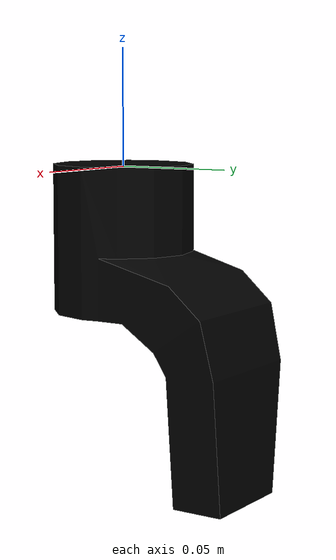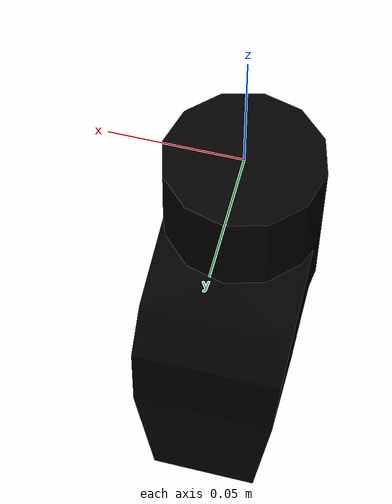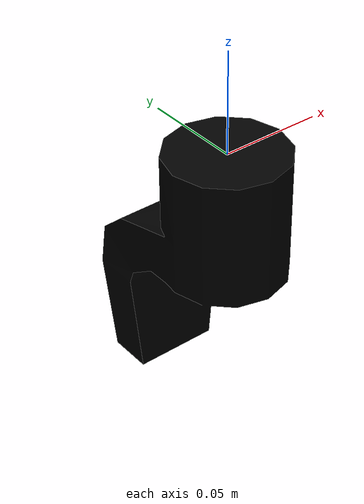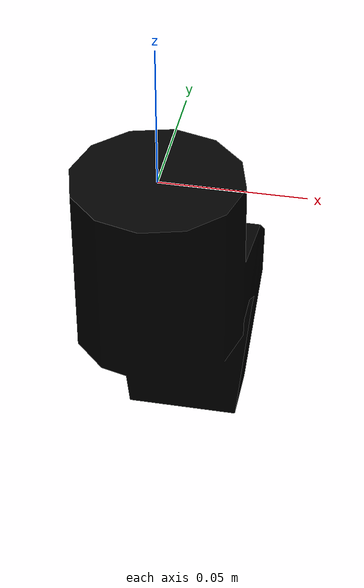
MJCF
<mujoco model="chassis_rwheel_front_link1">
  <default>
    <default class="visual">
      <geom group="2" type="mesh" contype="0" conaffinity="0"/>
    </default>
    <default class="collision">
      <geom group="3" type="mesh"/>
    </default>
  </default>
  <asset>
    <material name="material_chassis_rwheel_front_link1_0" specular="0.20000000000000004" shininess="1.0" rgba="0.00000000 0.00000000 0.00000000 1.0"/>
    <mesh file="chassis_rwheel_front_link1.obj"/>
  </asset>
  <worldbody>
    <body name="chassis_rwheel_front_link1">
      <geom material="material_chassis_rwheel_front_link1_0" mesh="chassis_rwheel_front_link1" class="visual"/>
      <geom mesh="chassis_rwheel_front_link1" class="collision"/>
    </body>
  </worldbody>
</mujoco>
